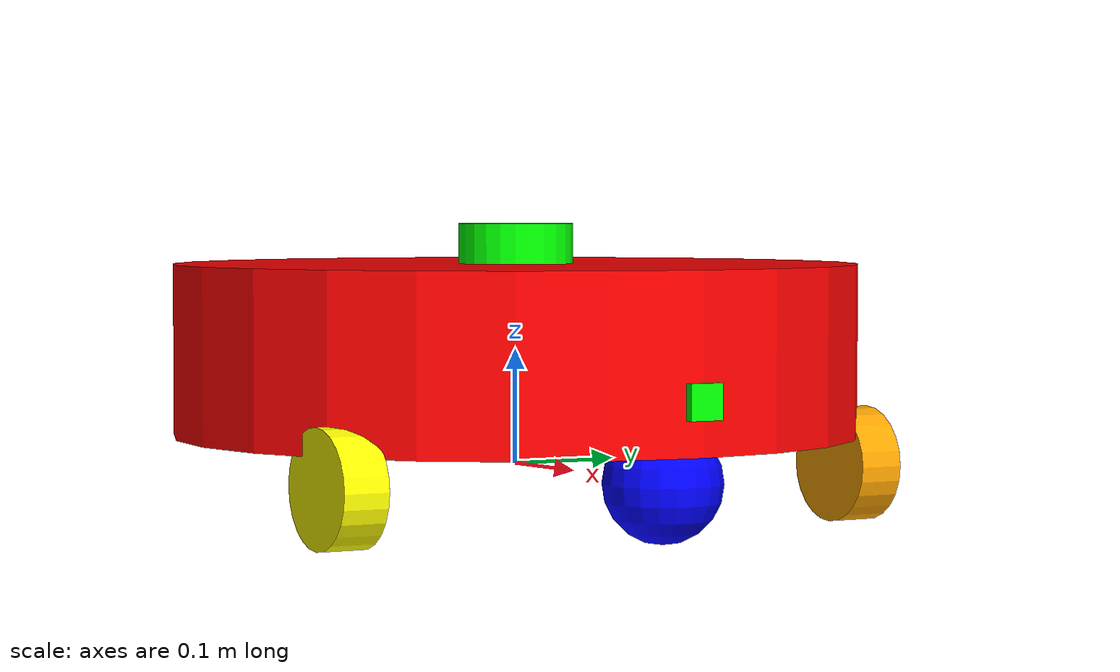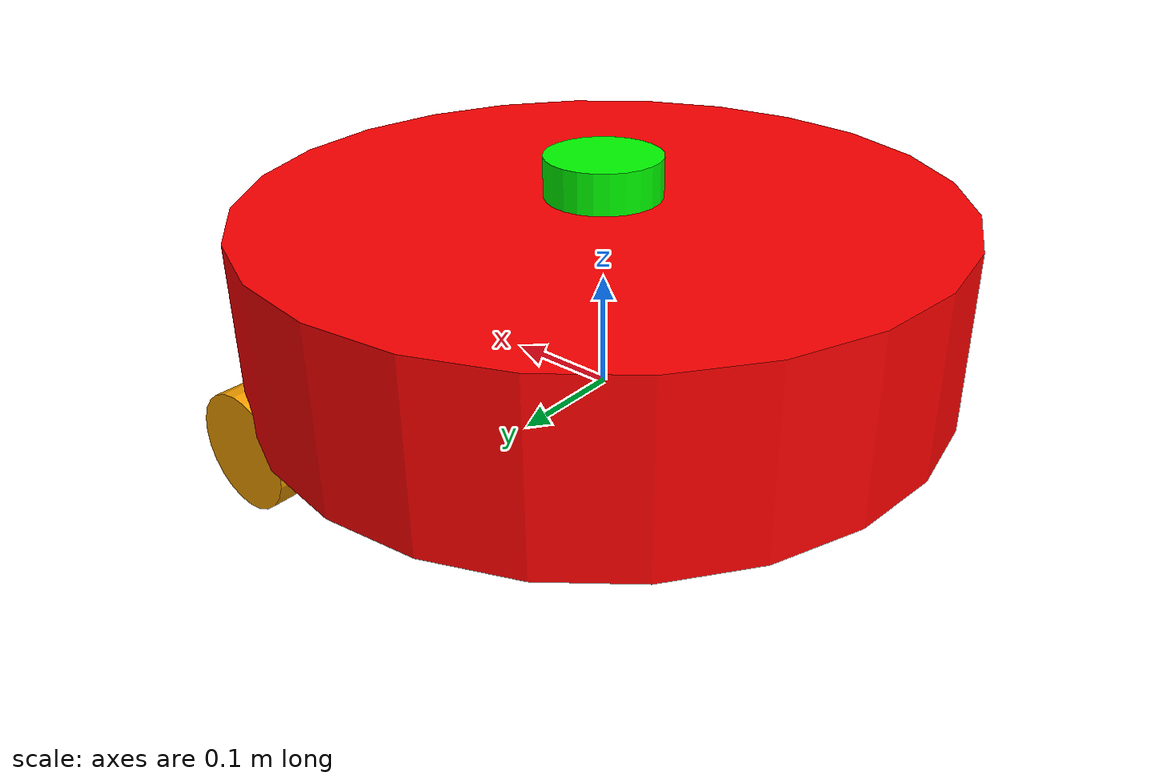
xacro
<?xml version="1.0"?>
<robot xmlns:xacro="http://www.ros.org/wiki/xacro"  name="robot">
    <!--include file for parts of robot-->
    <!--This is the main urdf file for our robot-->
    <xacro:include filename="robot_structure.xacro" />
    <xacro:include filename="inertial_macros.xacro"/>
    <xacro:include filename="gazebo_control.xacro"/>
    <xacro:include filename="lidar.xacro"/>
    <xacro:include filename="camera.xacro"/>
    <xacro:include filename="gazebo_model.xacro"/>

</robot>

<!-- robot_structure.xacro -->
<robot xmlns:xacro="http://www.ros.org/wiki/xacro">

    <!--robot tag calls for separate inertia file for different bodies-->
    <xacro:include filename="inertial_macros.xacro"/>

    <!--Declare color tags to give it to materials-->

    <material name="red">
        <color rgba="1.0 0.0 0.0 1"/>
    </material>
    <material name="green">
        <color rgba="0.0 1.0 0.0 1"/>
    </material>
    <material name="blue">
        <color rgba="0.0 0.0 1.0 1"/>
    </material>
    <material name="orange">
        <color rgba="1.0 0.65 0 1"/>
    </material>
    <material name="yellow">
        <color rgba="1.0 1.0 0.0 1"/>
    </material>
    <material name="magenta">
        <color rgba="1.0 0.0 1.0 1"/>
    </material>

    <!--BASE LINK, the main origin of robot-->
    <link name="base_link">
    </link>

    <!--CHASIS LINK, a cylindrical robot-->

    <joint name="round_body_joint" type="fixed">
        <parent link="base_link"/>
        <child link="round_body"/>
        <!--origin at center of base_link, with 5 cm ground clearance-->
        <origin xyz="0 0 0.05" rpy="0 0 0"/>
    </joint>

    <link name="round_body">
        <visual>
            <origin xyz="0 0 0.05" rpy="0 0 0"/>
            <geometry>
                <cylinder length="0.15" radius="0.3"/>
            </geometry>
            <material name="red"/>
        </visual>
        <collision>
            <origin xyz="0 0 0.05" rpy="0 0 0"/>
            <geometry>
                <cylinder length="0.15" radius="0.3"/>
            </geometry>
        </collision>
        <xacro:inertial_cylinder mass="0.3" length="0.15" radius="0.3">
            <origin xyz="0 0 0" rpy="0 0 0"/>
        </xacro:inertial_cylinder>
    </link>

    <gazebo reference="round_body">
        <material>Gazebo/Red</material>
    </gazebo>

    <!--LEFT WHEEL-->

     <joint name="left_wheel_joint" type="continuous">
        <parent link="base_link"/>
        <child link="left_wheel"/>
        <origin xyz="0.15 0.25 0" rpy="${-3.14/2} 0 0"/>
        <axis xyz="0 0 1"/>
    </joint>

    <link name="left_wheel">
        <visual>
            <geometry>
                <cylinder length="0.04" radius="0.05"/>
            </geometry>
            <material name="orange"/>
        </visual>
        <collision>
            <geometry>
                <cylinder length="0.04" radius="0.05"/>
            </geometry>
        </collision>
        <xacro:inertial_cylinder mass="0.1" length="0.05" radius="0.05">
            <origin xyz="0 0 0" rpy="0 0 0"/>
        </xacro:inertial_cylinder>
    </link>
    <gazebo reference="left_wheel">
        <material>Gazebo/Orange</material>
    </gazebo>

    <!--RIGHT WHEEL-->
    <joint name="right_wheel_joint" type="continuous">
        <parent link="base_link"/>
        <child link="right_wheel"/>
        <origin xyz="0.15 -0.25 0" rpy="${3.14/2} 0 0"/>
        <axis xyz="0 0 -1"/>
    </joint>

    <link name="right_wheel">
        <visual>
            <geometry>
                <cylinder length="0.04" radius="0.05"/>
            </geometry>
            <material name="yellow"/>
        </visual>
        <collision>
            <geometry>
                <cylinder length="0.04" radius="0.05"/>
            </geometry>
        </collision>
        <xacro:inertial_cylinder mass="0.1" length="0.05" radius="0.05">
            <origin xyz="0 0 0" rpy="0 0 0"/>
        </xacro:inertial_cylinder>
    </link>
    <gazebo reference="right_wheel">
        <material>Gazebo/Yellow</material>
    </gazebo>

    <!--CASTER wHEEL-->
    <joint name="caster_wheel_joint" type="fixed">
        <parent link="round_body"/>
        <child link="caster_wheel"/>
        <origin xyz="0.24 0 -0.05" rpy="0 0 0"/>
    </joint>

    <link name="caster_wheel">
        <visual>
            <geometry>
                <sphere radius="0.05"/>
            </geometry>
            <material name="blue"/>
        </visual>
        <collision>
            <geometry>
                <sphere radius="0.05"/>
            </geometry>
        </collision>
        <xacro:inertial_sphere mass="0.1" radius="0.05">
            <origin xyz="0 0 0" rpy="0 0 0"/>
        </xacro:inertial_sphere>
    </link>
    <gazebo reference="caster_wheel">
        <material>Gazebo/Blue</material>
        <!--this is to reduce friction on caster wheel, else it will drag(fixed)-->
        <mu1 value="0.001"/>
        <mu2 value="0.001"/>
    </gazebo>

</robot>

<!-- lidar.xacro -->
<robot xmlns:xacro="http://www.ros.org/wiki/xacro">
    <!--keeping LIDAR sensor as a separate xacro file-->
    <joint name="lidar_joint" type="fixed">
        <parent link="round_body"/>
        <child link="lidar_link"/>
        <!--Putting it at center of robot body-->
        <origin xyz="0 0 0.14" rpy="0 0 0"/>
    </joint>

    <link name="lidar_link">
        <visual>
            <geometry>
                <cylinder radius="0.05" length="0.04"/>
            </geometry>
            <material name="green"/>
        </visual>
        <collision>
            <geometry>
                <cylinder radius="0.05" length="0.04"/>
            </geometry>
        </collision>
        <xacro:inertial_cylinder mass="0.1" length="0.04" radius="0.05">
            <origin xyz="0 0 0" rpy="0 0 0"/>
        </xacro:inertial_cylinder>
    </link>

    <gazebo reference="lidar_link">
        <material>Gazebo/Green</material>
        <!--sensor tag makes the cylinder behave as a sensor-->
        <sensor name="laser" type="ray">
            <!--origin of sensor at link origin-->
            <pose>0 0 0 0 0 0</pose>
            <visualize>true</visualize>
            <!--visualize at 10 samples per second-->
            <update_rate>10</update_rate>
            <ray>
                <scan>
                    <horizontal>
                    <!--180 samples for 90 degree sweep, -45 to +45-->
                        <samples>180</samples>
                        <min_angle>-0.7854</min_angle>
                        <max_angle>0.7854</max_angle>
                    </horizontal>
                </scan>
                <range>
                <!--keeping max range to 5, further trim sample size-->
                    <min>0.3</min>
                    <max>5</max>
                </range>
                <noise>
                    <type>gaussian</type>
                    <mean>0.0</mean>
                    <stddev>0.01</stddev>
                </noise>
            </ray>
            <!--this plugin tag moves data in-out of Gazebo-->
            <plugin name="laser_controller" filename="libgazebo_ros_ray_sensor.so">
                <ros>
                    <!--ros topic name-->
                    <argument>~/out:=scan</argument>
                </ros>
                <!--publishes LaserScan messages on the /Scan topic in lidar_link TF frame-->
                <output_type>sensor_msgs/LaserScan</output_type>
                <frame_name>lidar_link</frame_name>
            </plugin>
        </sensor>
    </gazebo>

</robot>

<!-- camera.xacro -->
<robot xmlns:xacro="http://www.ros.org/wiki/xacro">
    <joint name="camera_joint" type="fixed">
        <parent link="round_body"/>
        <child link="camera_link"/>
        <origin xyz="0.3 0 0.02" rpy="0 0 0"/>
    </joint>
    <link name="camera_link">
        <visual>
            <geometry>
                <box size="0.010 0.03 0.03"/>
            </geometry>
            <material name="green"/>
        </visual>
    </link>

    <gazebo reference="camera_link">
        <material>Gazebo/Green</material>
        <sensor name="camera" type="camera">
            <pose>0 0 0 0 0 0</pose>
            <visualize>true</visualize>
            <update_rate>10</update_rate>
            <camera>
                <horizontal_fov>1.5708</horizontal_fov>
                <image>
                    <format>R8G8B8</format>
                    <width>640</width>
                    <height>480</height>
                </image>
                <clip>
                    <near>0.05</near>
                    <far>8.0</far>
                </clip>
            </camera>
            <plugin name="camera_controller" filename="libgazebo_ros_camera.so">
                <frame_name>camera_link_optical</frame_name>
            </plugin>
        </sensor>
    </gazebo>

    <joint name="camera_optical_joint" type="fixed">
        <parent link="camera_link"/>
        <child link="camera_link_optical"/>
        <origin xyz="0 0 0" rpy="-1.5708 0 1.5708"/>
    </joint>
    <link name="camera_link_optical">
    </link>

</robot>
